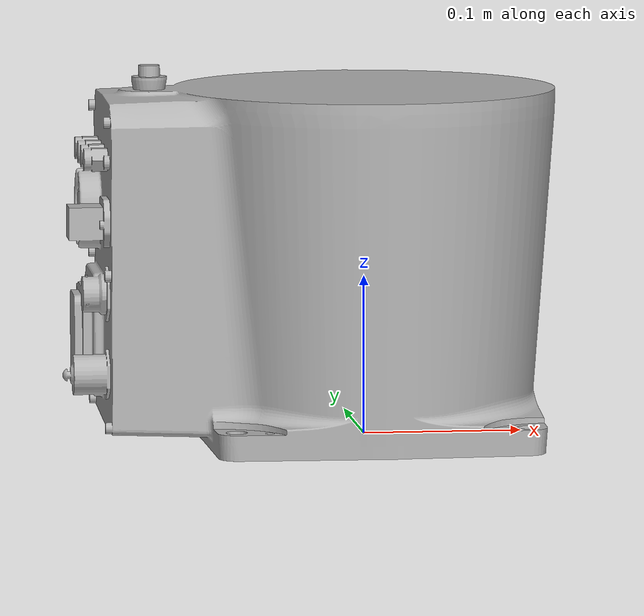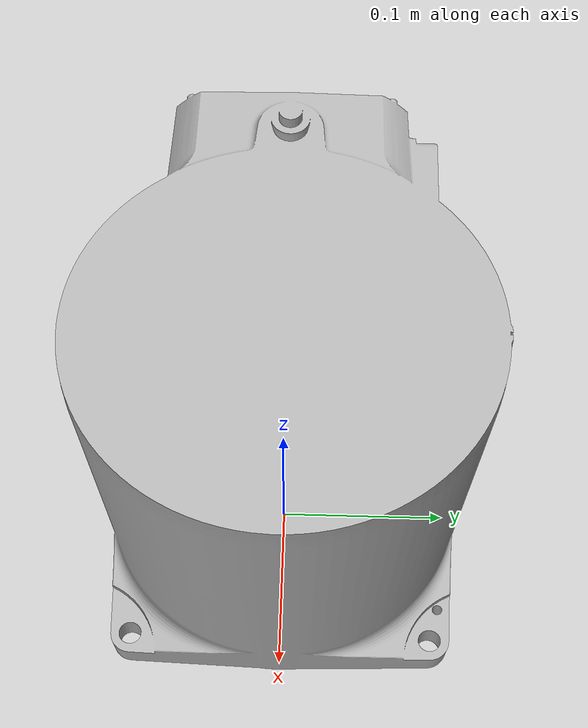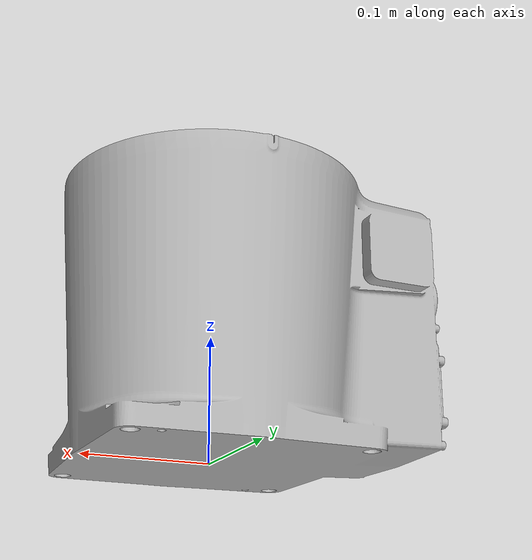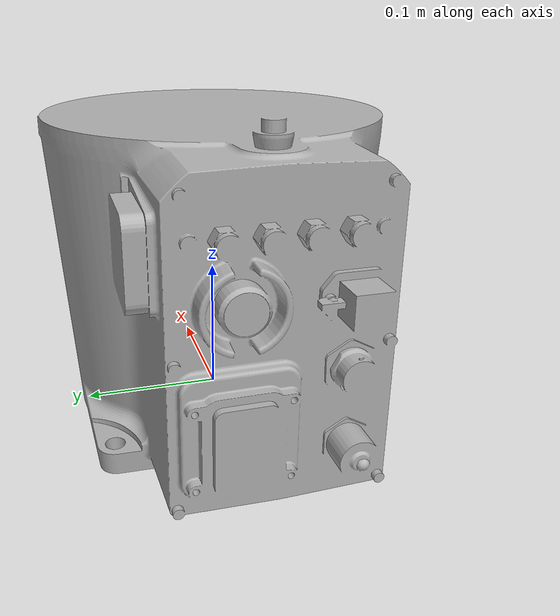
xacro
<?xml version="1.0" ?>
<robot name="IRB1200H_5-90-STD" xmlns:xacro="http://www.ros.org/wiki/xacro">

<xacro:include filename="$(find IRB1200H_5-90-STD_description)/urdf/materials.xacro" />
<xacro:include filename="$(find IRB1200H_5-90-STD_description)/urdf/IRB1200H_5-90-STD.trans" />
<xacro:include filename="$(find IRB1200H_5-90-STD_description)/urdf/IRB1200H_5-90-STD.gazebo" />
<link name="base_link">
  <inertial>
    <origin xyz="-0.023635021150547376 0.0004753411198600048 0.11218944380427551" rpy="0 0 0"/>
    <mass value="83.56281675930393"/>
    <inertia ixx="0.579272" iyy="0.781174" izz="0.698162" ixy="0.004319" iyz="-0.001283" ixz="-0.00506"/>
  </inertial>
  <visual>
    <origin xyz="0 0 0" rpy="0 0 0"/>
    <geometry>
      <mesh filename="package://IRB1200H_5-90-STD_description/meshes/base_link.stl" scale="0.001 0.001 0.001"/>
    </geometry>
    <material name="silver"/>
  </visual>
  <collision>
    <origin xyz="0 0 0" rpy="0 0 0"/>
    <geometry>
      <mesh filename="package://IRB1200H_5-90-STD_description/meshes/base_link.stl" scale="0.001 0.001 0.001"/>
    </geometry>
  </collision>
</link>

</robot>

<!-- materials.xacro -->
<robot name="IRB1200H_5-90-STD" xmlns:xacro="http://www.ros.org/wiki/xacro" >

<material name="silver">
  <color rgba="0.700 0.700 0.700 1.000"/>
</material>

</robot>

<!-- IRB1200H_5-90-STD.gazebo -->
<robot name="IRB1200H_5-90-STD" xmlns:xacro="http://www.ros.org/wiki/xacro" >

<xacro:property name="body_color" value="Gazebo/Silver" />

<gazebo>
  <plugin name="control" filename="libgazebo_ros_control.so"/>
</gazebo>
<gazebo reference="base_link">
  <material>${body_color}</material>
  <mu1>0.2</mu1>
  <mu2>0.2</mu2>
  <selfCollide>true</selfCollide>
  <gravity>true</gravity>
</gazebo>

</robot>
